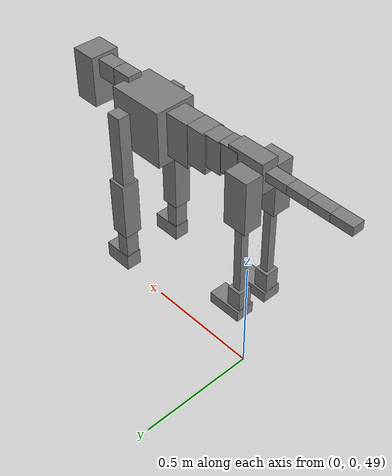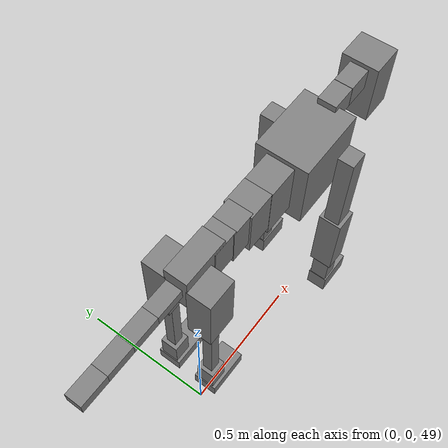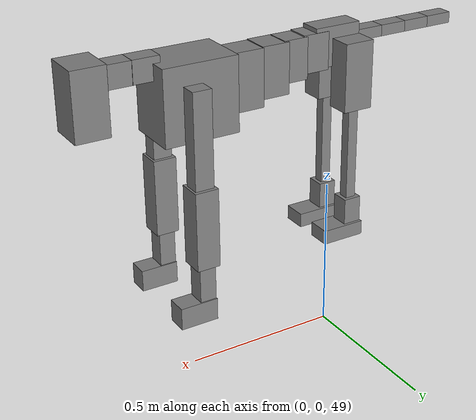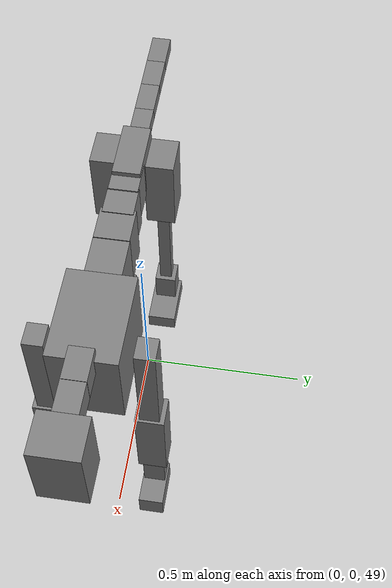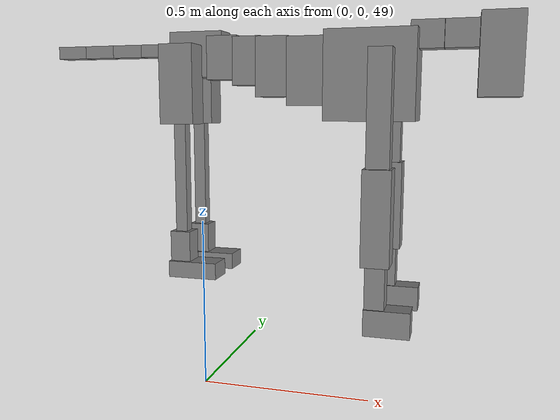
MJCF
<mujoco model="dog">

    <default>
        <joint armature="0.02" stiffness="1" damping="0.2" limited="true"/>
        <geom condim="3" friction="1 0.05 0.05" margin="0.01"/>
        <motor ctrllimited="true" ctrlrange="-1.0 1.0" forcelimited="true" gear="50"/>
    </default>

    <compiler inertiafromgeom="true" angle="radian"/>

    <option timestep="0.016" iterations="50" tolerance="1e-10" solver="Newton" jacobian="dense" cone="pyramidal"/>

    <size nconmax="20000" njmax="60000" nstack="5000000"/>
    <visual>
        <map force="0.1" zfar="30"/>
        <rgba haze="0.15 0.25 0.35 1"/>
        <quality shadowsize="2048"/>
        <global offwidth="800" offheight="800"/>
    </visual>

    <asset>
        <texture type="skybox" builtin="gradient" rgb1="0.3 0.5 0.7" rgb2="0 0 0" width="512" height="512"/>
        <texture name="texplane" type="2d" builtin="checker" rgb1=".2 .3 .4" rgb2=".1 0.15 0.2" width="512" height="512"
                 mark="cross" markrgb=".8 .8 .8"/>
        <texture name="texgeom" type="cube" builtin="flat" mark="cross" width="127" height="1278" rgb1="0.8 0.6 0.4"
                 rgb2="0.8 0.6 0.4" markrgb="1 1 1" random="0.01"/>

        <material name="matplane" reflectance="0.3" texture="texplane" texrepeat="1 1" texuniform="true"/>
        <material name="matgeom" texture="texgeom" texuniform="true" rgba="0.8 0.6 .4 1"/>
    </asset>

    <worldbody>
        <geom name="floor" pos="0 0 0" size="0 0 .25" type="plane" material="matplane" condim="3"/>

        <light directional="false" diffuse=".2 .2 .2" specular="0 0 0" pos="0 0 5" dir="0 0 -1" castshadow="false"/>
        <light mode="targetbodycom" target="torso" directional="false" diffuse=".8 .8 .8" specular="0.3 0.3 0.3"
               pos="0 0 4.0" dir="0 0 -1"/>

        <body name="root" pos="0 0 50">
            <freejoint name="root_1"/>
            <geom type="box" pos="0 0 -0.02" size="0.0774  0.0358  0.063" density="2030"/>

            <body name="spine1" pos="0.054 0 0">
                <joint name="spine1_y" axis="0 1 0" range="0 0.7" limited="true"/>
                <geom type="box" pos="0.02375 0 -0.03" size="0.04375  0.0375  0.05985" density="2030"/>

                <body name="spine2" pos="0.0612 0 0">
                    <joint name="spine2_y" axis="0 1 0" range="-0.15 0.15" limited="true"/>
                    <geom type="box" pos="0.03555  0  -0.04" size="0.04055  0.039  0.06615" density="2030"/>

                    <body name="spine3" pos="0.0730 0 0">
                        <joint name="spine3_y" axis="0 1 0" range="-0.15 0.15" limited="true"/>
                        <geom type="box" pos="0.03555  0  -0.057" size="0.04555  0.0445  0.081" density="2030"/>

                        <body name="spine4" pos="0.0780 0 0">
                            <joint name="spine4_y" axis="0 1 0" range="-0.15 0.15" limited="true"/>
                            <geom type="box" pos="0.05265  0  -0.07" size="0.05265  0.045  0.09135" density="2030"/>

                            <body name="torso" pos="0.1082 0 0">
                                <joint name="torso_y" axis="0 1 0" range="-0.15 0.15" limited="true"/>
                                <geom type="box" pos="0.11925  0  -0.085" size="0.11925  0.085  0.11745"
                                      density="2030"/>

                                <body name="neck1" pos="0.2160  0   0.0180">
                                    <joint name="neck1_y" axis="0 1 0" range="-1.2  -1" limited="true"/>
                                    <geom type="box" pos="0.0423  0  0" size="0.0423  0.03  0.036" density="2325"/>

                                    <body name="neck2" pos="0.0853  0  0">
                                        <joint name="neck2_y" axis="0 1 0" range="0.1  0" limited="true"/>
                                        <geom type="box" pos="0.0423  0  0" size="0.0423  0.03  0.036" density="2325"/>

                                        <body name="head" pos="0.0853  0  0">
                                            <joint name="head_y" axis="0 1 0" range="-0.3  -0.2" limited="true"/>
                                            <geom type="box" pos="0.0531  0  -0.055" size="0.0531  0.06  0.1044"
                                                  density="4030"/>

                                        </body>
                                    </body>
                                </body>

                                <body name="front_shoulder" pos="0.156  0   -0.0480">
                                    <joint name="front_shoulder_y" axis="0 1 0" range="-1 1.5" limited="true"/>
                                    <geom type="box" pos="0 0.13 -0.1356" size="0.0300  0.0256  0.1623" density="1158"/>
                                    <geom type="box" pos="0 -0.13 -0.1356" size="0.0300  0.0256  0.1623"
                                          density="1158"/>

                                    <body name="front_elbow" pos="0  0  -0.2713">
                                        <joint name="front_elbow_y" axis="0 1 0" range="-2 0" limited="true"/>
                                        <geom type="box" pos="0 0.13 -0.1247" size="0.0370  0.0378  0.1247"
                                              density="1081"/>
                                        <geom type="box" pos="0 -0.13 -0.1247" size="0.0370  0.0378  0.1247"
                                              density="1081"/>

                                        <body name="front_wrist" pos="0  0  -0.2493">
                                            <joint name="front_wrist_y" axis="0 1 0" range="-0.2 0" limited="true"/>
                                            <geom type="box" pos="0 0.13 -0.0633" size="0.0259  0.0287  0.0764"
                                                  density="1664"/>
                                            <geom type="box" pos="0 -0.13 -0.0633" size="0.0259  0.0287  0.0764"
                                                  density="1664"/>

                                            <body name="front_finger_end" pos="0  0  -0.1265">
                                                <joint name="front_finger_y" axis="0 1 0" range="-0.4 1"
                                                       limited="true"/>
                                                <geom type="box" pos="0.0329  0.13  -0.0200"
                                                      size="0.0602  0.0329  0.0350" density="1515"/>
                                                <geom type="box" pos="0.0329  -0.13  -0.0200"
                                                      size="0.0602  0.0329  0.0350" density="1515"/>

                                            </body>

                                        </body>
                                    </body>
                                </body>

                            </body>
                        </body>
                    </body>
                </body>
            </body>

            <body name="back_hip" pos="-0.03 0 -0.018">
                <joint name="back_hip_y" axis="0 1 0" range="-1.5 0.3" limited="true"/>
                <geom type="box" pos="0 0.07 -0.0856" size="0.0487  0.0382  0.1084" density="1154"/>
                <geom type="box" pos="0 -0.07 -0.0856" size="0.0487  0.0382  0.1084" density="1154"/>

                <body name="back_knee" pos="0  0  -0.1712">
                    <joint name="back_knee_y" axis="0 1 0" range="0 2.8" limited="true"/>
                    <geom type="box" pos="0 0.07 -0.1682" size="0.0166  0.0163  0.1838" density="1227"/>
                    <geom type="box" pos="0 -0.07 -0.1682" size="0.0166  0.0163  0.1838" density="1227"/>

                    <body name="back_ankle" pos="0  0  -0.3364">
                        <joint name="back_ankle_y" axis="0 1 0" range="-2.2 0" limited="true"/>
                        <geom type="box" pos="0 0.07 -0.0443" size="0.0289  0.0289  0.0556" density="1284"/>
                        <geom type="box" pos="0 -0.07 -0.0443" size="0.0289  0.0289  0.0556" density="1284"/>

                        <body name="back_toe_end" pos="0  0  -0.0886">
                            <joint name="back_toe_y" axis="0 1 0" range="-0.4 1" limited="true"/>
                            <geom type="box" pos="0.0385  0.07  -0.0080" size="0.0706  0.0385  0.0230" density="1515"/>
                            <geom type="box" pos="0.0385  -0.07  -0.0080" size="0.0706  0.0385  0.0230" density="1515"/>

                        </body>
                    </body>
                </body>
            </body>

            <body name="tail1" pos="-0.074 0 -0.006">
                <joint name="tail1_y" axis="0 1 0" range="-0.2 0.2" limited="true"/>
                <geom type="box" pos="-0.0536  0  0" size="0.045  0.025  0.0175" density="1587"/>

                <body name="tail2" pos="-0.09 0 0">
                    <joint name="tail2_y" axis="0 1 0" range="-0.2 0.2" limited="true"/>
                    <geom type="box" pos="-0.0536  0  0" size="0.045  0.025  0.0175" density="1587"/>

                    <body name="tail3" pos="-0.09 0 0">
                        <joint name="tail3_y" axis="0 1 0" range="-0.2 0.2" limited="true"/>
                        <geom type="box" pos="-0.0536  0  0" size="0.045  0.025  0.0175" density="1587"/>

                        <body name="tail4" pos="-0.09 0 0">
                            <joint name="tail4_y" axis="0 1 0" range="-0.2 0.2" limited="true"/>
                            <geom type="box" pos="-0.0536  0  0" size="0.045  0.025  0.0175" density="1587"/>

                        </body>
                    </body>
                </body>
            </body>
        </body>
    </worldbody>

    <actuator>
        <motor joint="spine1_y" forcerange="-150 150     "/>
        <motor joint="spine2_y" forcerange="-150 150     "/>
        <motor joint="spine3_y" forcerange="-150 150     "/>
        <motor joint="spine4_y" forcerange="-150 150     "/>
        <motor joint="torso_y" forcerange="-150 150     "/>
        <motor joint="neck1_y" forcerange="-100 100       "/>
        <motor joint="neck2_y" forcerange="-100 100       "/>
        <motor joint="head_y" forcerange="-150 150       "/>
        <motor joint="front_shoulder_y" forcerange="-147.39 123.43"/>
        <motor joint="front_elbow_y" forcerange="-198.80 176.31"/>
        <motor joint="front_wrist_y" forcerange="-106.34 123.53"/>
        <motor joint="front_finger_y" forcerange="-84.10 51.11"/>
        <motor joint="back_hip_y" forcerange="-328.60 380.90"/>
        <motor joint="back_knee_y" forcerange="-220.55 216.94"/>
        <motor joint="back_angle_y" forcerange="-234.00 128.44"/>
        <motor joint="back_toe_y" forcerange="-135.19 92.88"/>
        <motor joint="tail1_y" forcerange="-50 50     "/>
        <motor joint="tail2_y" forcerange="-50 50     "/>
        <motor joint="tail3_y" forcerange="-50 50     "/>
        <motor joint="tail4_y" forcerange="-50 50     "/>
    </actuator>
</mujoco>
